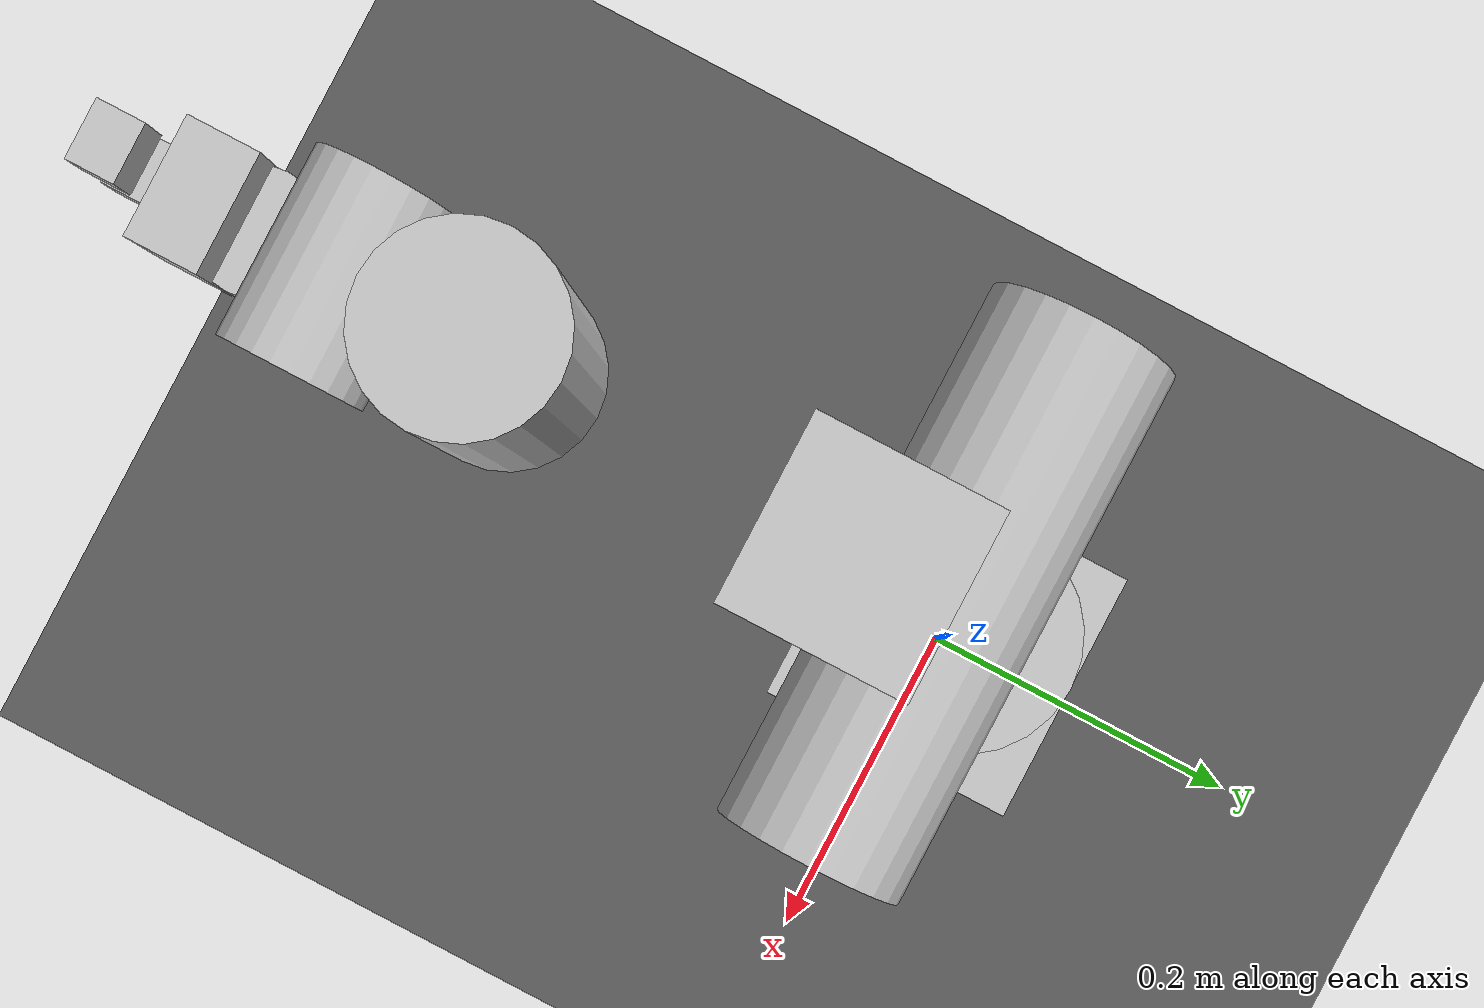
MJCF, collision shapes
<?xml version='1.0' encoding='utf-8'?>
<mujoco model="arctos_urdf">
  <compiler angle="radian" meshdir="../meshes/" autolimits="true" />
  <worldbody>
    <geom size="0.075 0.075 0.07" pos="0 0 0.07" type="box" rgba="0.776471 0.776471 0.776471 0.3" group="3" contype="1" conaffinity="1" />
    <body name="Link_1_1" pos="0 0.000529 0.111">
      <inertial pos="0.00221889 -0.00486344 0.0854684" quat="0.684221 0.162893 0.0161784 0.710666" mass="10.3947" diaginertia="0.0746734 0.0615264 0.0554832" />
      <joint name="joint1" pos="0 0 0" axis="0 0 1" damping="5.0" frictionloss="0.5" />
      <geom size="0.06 0.09" pos="0 0 0.09" type="cylinder" rgba="0.776471 0.776471 0.776471 0.3" group="3" contype="1" conaffinity="1" />
      <body name="Link_2_1" pos="-0.05713 -0.020885 0.178378">
        <inertial pos="0.0553143 0.0108436 0.114124" quat="0.705835 -0.0180491 0.00517452 0.708127" mass="11.5581" diaginertia="0.144738 0.128595 0.0443268" />
        <joint name="joint2" pos="0 0 0" axis="1 0 0" damping="5.0" frictionloss="0.5" />
        <geom size="0.045 0.13" pos="0.05 0 0.13" quat="0.707105 0 0.707108 0" type="cylinder" rgba="0.776471 0.776471 0.776471 0.3" group="3" contype="1" conaffinity="1" />
        <body name="Link_3_1" pos="0.10013 0.001311 0.261007">
          <inertial pos="-0.0417837 -0.0391303 0.0122176" quat="0.790559 0.5947 0.0870194 -0.117368" mass="3.60141" diaginertia="0.0125235 0.0122062 0.00647223" />
          <joint name="joint3" pos="0 0 0" axis="-1 0 0" damping="5.0" frictionloss="0.5" />
          <geom size="0.04 0.04 0.04" pos="-0.04 -0.04 0" type="box" rgba="0.776471 0.776471 0.776471 0.3" group="3" contype="1" conaffinity="1" />
          <body name="Link_4_1" pos="-0.042999 -0.139695 0.021705">
            <inertial pos="0.00021105 -0.0602883 -0.000540823" quat="0.513594 0.486394 -0.519065 0.479806" mass="3.78529" diaginertia="0.0173639 0.0116246 0.0114895" />
            <joint name="joint4" pos="0 0 0" axis="0 1 0" damping="5.0" frictionloss="0.5" />
            <geom size="0.04 0.06" pos="0 -0.06 0" type="cylinder" rgba="0.776471 0.776471 0.776471 0.3" group="3" contype="1" conaffinity="1" />
            <body name="Link_5_1" pos="-0.039012 -0.121187 -0.001774">
              <inertial pos="0.0397291 -0.0126624 0.000792919" quat="0.505014 0.466494 0.543912 0.481149" mass="0.831981" diaginertia="0.000959166 0.000906596 0.000731237" />
              <joint name="joint5" pos="0 0 0" axis="-1 0 0" damping="5.0" frictionloss="0.5" />
              <geom size="0.03 0.04" pos="0.04 0 0" quat="0.707105 0 0.707108 0" type="cylinder" rgba="0.776471 0.776471 0.776471 0.3" group="3" contype="1" conaffinity="1" />
              <body name="Link_6_1" pos="0.039204 -0.033835 0">
                <inertial pos="0.0082086 -0.0134515 -0.000745211" quat="0.750608 -0.0167355 -0.00875287 0.660478" mass="0.684483" diaginertia="0.000608926 0.000447794 0.00033624" />
                <joint name="joint6" pos="0 0 0" axis="0 1 0" damping="5.0" frictionloss="0.5" />
                <geom size="0.025 0.005" type="cylinder" rgba="0.776471 0.776471 0.776471 0.3" group="3" contype="1" conaffinity="1" />
                <geom size="0.025 0.015 0.025" pos="0 -0.021085 0" type="box" rgba="0.776471 0.776471 0.776471 0.3" group="3" contype="1" conaffinity="1" />
                <body name="Left_jaw_1" pos="0.007741 -0.046083 0.029551">
                  <inertial pos="-0.0111427 -0.00969244 -0.00938579" quat="0.40896 0.576846 -0.40896 0.576846" mass="0.073696" diaginertia="1.4e-05 1.17016e-05 5.29844e-06" />
                  <joint name="jaw1" pos="0 0 0" axis="0 0 -1" type="slide" range="0 0.015" actuatorfrcrange="-100 100" damping="1.0" frictionloss="0.1" />
                  <geom size="0.0125 0.01 0.01" pos="-0.01 -0.01 -0.01" type="box" rgba="0.776471 0.776471 0.776471 0.3" group="3" contype="1" conaffinity="1" />
                  <geom type="mesh" mesh="Left_jaw_1" material="robot_silver" contype="0" conaffinity="0" group="1" pos="-0.007934 0.359845 -0.599867" />
                </body>
                <body name="Right_jaw_1" pos="0.007741 -0.046083 -0.030449">
                  <inertial pos="-0.0082891 -0.00976854 0.00939551" quat="0.466127 0.365216 -0.615147 0.520516" mass="0.073129" diaginertia="1.43132e-05 1.08838e-05 5.80296e-06" />
                  <joint name="jaw2" pos="0 0 0" axis="0 0 1" type="slide" range="0 0.015" actuatorfrcrange="-100 100" damping="1.0" frictionloss="0.1" />
                  <geom size="0.0125 0.01 0.01" pos="-0.01 -0.01 0.01" type="box" rgba="0.776471 0.776471 0.776471 0.3" group="3" contype="1" conaffinity="1" />
                  <geom type="mesh" mesh="Right_jaw_1" material="robot_silver" contype="0" conaffinity="0" group="1" pos="-0.007934 0.359845 -0.539867" />
                </body>
                <geom type="mesh" mesh="Link_6_1" material="robot_silver" contype="0" conaffinity="0" group="1" pos="-0.000193 0.313762 -0.570316" />
                <geom type="mesh" mesh="Gripper_1" material="robot_silver" contype="0" conaffinity="0" group="1" pos="-0.000193 0.319847 -0.570316" />
              </body>
              <geom type="mesh" mesh="Link_5_1" material="robot_silver" contype="0" conaffinity="0" group="1" pos="0.039011 0.279927 -0.570316" />
            </body>
            <geom type="mesh" mesh="Link_4_1" material="robot_silver" contype="0" conaffinity="0" group="1" pos="-1e-06 0.15874 -0.57209" />
          </body>
          <geom type="mesh" mesh="Link_3_1" material="robot_silver" contype="0" conaffinity="0" group="1" pos="-0.043 0.019045 -0.550385" />
        </body>
        <geom type="mesh" mesh="Link_2_1" material="robot_silver" contype="0" conaffinity="0" group="1" pos="0.05713 0.020356 -0.289378" />
      </body>
      <geom type="mesh" mesh="Link_1_1" material="robot_silver" contype="0" conaffinity="0" group="1" pos="-0.0 -0.000529 -0.111" />
    </body>
    <geom type="mesh" mesh="base_link" material="robot_silver" contype="0" conaffinity="0" group="1" pos="0 0 0" />
    <geom name="ground" type="plane" size="1 1 0.01" material="groundplane" conaffinity="1" condim="3" />
    <light pos="0 0 1.5" dir="0 0 -1" diffuse="0.8 0.8 0.8" />
  </worldbody>
  <visual>
    <headlight ambient="0.3 0.3 0.3" />
    <quality shadowsize="4096" />
    <rgba haze="0.15 0.25 0.35 1" />
  </visual>
  <option timestep="0.002" gravity="0 0 -9.81" />
  <asset>
    <mesh name="base_link" file="base_link.stl" scale="0.001 0.001 0.001" />
    <mesh name="Link_1_1" file="Link_1_1.stl" scale="0.001 0.001 0.001" />
    <mesh name="Link_2_1" file="Link_2_1.stl" scale="0.001 0.001 0.001" />
    <mesh name="Link_3_1" file="Link_3_1.stl" scale="0.001 0.001 0.001" />
    <mesh name="Link_4_1" file="Link_4_1.stl" scale="0.001 0.001 0.001" />
    <mesh name="Link_5_1" file="Link_5_1.stl" scale="0.001 0.001 0.001" />
    <mesh name="Gripper_1" file="Gripper_1.stl" scale="0.001 0.001 0.001" />
    <mesh name="Link_6_1" file="Link_6_1.stl" scale="0.001 0.001 0.001" />
    <mesh name="Left_jaw_1" file="Left_jaw_1.stl" scale="0.001 0.001 0.001" />
    <mesh name="Right_jaw_1" file="Right_jaw_1.stl" scale="0.001 0.001 0.001" />
    <texture type="2d" name="groundplane" builtin="checker" width="300" height="300" rgb1="0.3 0.3 0.3" rgb2="0.4 0.4 0.4" />
    <material name="groundplane" texture="groundplane" texuniform="true" texrepeat="5 5" reflectance="0.2" />
    <material name="robot_silver" rgba="0.7 0.7 0.7 1" specular="0.5" shininess="0.5" />
  </asset>
  <actuator>
    <position name="motor_joint1" joint="joint1" kp="150.0" ctrlrange="-3.14159 3.14159" />
    <position name="motor_joint2" joint="joint2" kp="150.0" ctrlrange="-3.14159 3.14159" />
    <position name="motor_joint3" joint="joint3" kp="100.0" ctrlrange="-3.14159 3.14159" />
    <position name="motor_joint4" joint="joint4" kp="50.0" ctrlrange="-3.14159 3.14159" />
    <position name="motor_joint5" joint="joint5" kp="30.0" ctrlrange="-3.14159 3.14159" />
    <position name="motor_joint6" joint="joint6" kp="20.0" ctrlrange="-3.14159 3.14159" />
    <position name="motor_jaw1" joint="jaw1" kp="10.0" ctrlrange="0 0.015" />
    <position name="motor_jaw2" joint="jaw2" kp="10.0" ctrlrange="0 0.015" />
  </actuator>
</mujoco>
